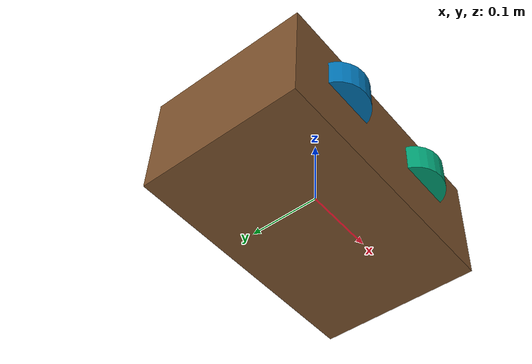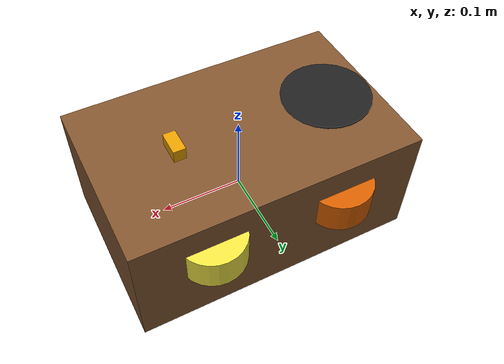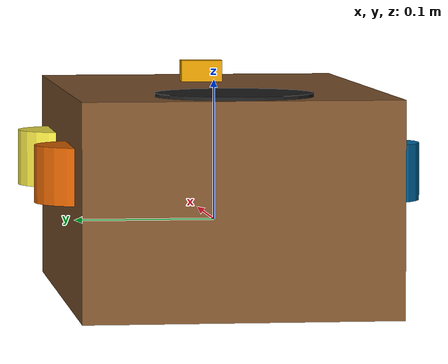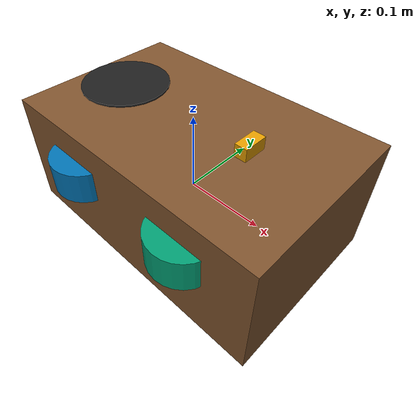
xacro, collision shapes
<?xml version="1.0" ?>
<robot name="RoomSeeker" xmlns:xacro="http://ros.org/wiki/xacro">
  <xacro:include filename="$(find room_seeker_description)/urdf/common_properties.xacro"/>
  <xacro:include filename="$(find room_seeker_description)/urdf/room_seeker.gazebo.xacro"/>

  <link name="base_footprint"/>

  <joint name="base_joint" type="fixed">
    <parent link="base_footprint"/>
    <child link="base_link" />
    <origin xyz="0 0 0" rpy="0 0 0"/>
  </joint>

  <link name="base_link">
    <visual>
      <origin xyz="0.0 0.0 0.0173" rpy="0 0 0"/>
      <geometry>
        <mesh filename="package://room_seeker_description/meshes/bases/MecanumCarBase.stl" scale="0.0001 0.0001 0.0001"/>
      </geometry>
      <material name="brown"/>
    </visual>

    <collision>
      <origin xyz="0.0 0.0 0.02" rpy="0 0 0"/>
      <geometry>
        <box size="0.35 0.22 0.15"/>
      </geometry>
    </collision>

    <inertial>
      <origin xyz="0 0 0" rpy="0 0 0"/>
      <mass value="1.3729096e+00"/>
      <inertia ixx="8.7002718e-03" ixy="-4.7576583e-05" ixz="1.1160499e-04"
               iyy="8.6195418e-03" iyz="-3.5422299e-06"
               izz="1.4612727e-02" />
    </inertial>
  </link>

  <!-- Front Right Wheel -->
  <joint name="front_right_wheel_joint" type="continuous">
    <parent link="base_link"/>
    <child link="front_right_wheel_link"/>
    <origin xyz="0.080 -0.095 0.040" rpy="0 0 0"/>
    <axis xyz="0 1 0"/>
  </joint>

  <link name="front_right_wheel_link">
    <visual>
      <origin xyz="0 0 0" rpy="0 0 0"/>
      <geometry>
        <mesh filename="package://room_seeker_description/meshes/wheels/RightMecanumWheel.stl" scale="0.00001 0.00001 0.00001"/>
      </geometry>
      <material name="dark"/>
    </visual>

    <collision>
      <origin xyz="0 0 0" rpy="0 0 0"/>
      <geometry>
        <cylinder length="0.040" radius="0.040"/>
      </geometry>
    </collision>

    <inertial>
      <origin xyz="0 0 0" />
      <mass value="2.8498940e-02" />
      <inertia ixx="1.1175580e-05" ixy="-4.2369783e-11" ixz="-5.9381719e-09"
               iyy="1.1192413e-05" iyz="-1.4400107e-11"
               izz="2.0712558e-05" />
      </inertial>
  </link>

  <!-- Front Left Wheel -->
  <joint name="front_left_wheel_joint" type="continuous">
    <parent link="base_link"/>
    <child link="front_left_wheel_link"/>
    <origin xyz="0.080 0.095 0.040" rpy="0 0 0"/>
    <axis xyz="0 1 0"/>
  </joint>

  <link name="front_left_wheel_link">
    <visual>
      <origin xyz="0 0 0" rpy="0 0 0"/>
      <geometry>
        <mesh filename="package://room_seeker_description/meshes/wheels/LeftMecanumWheel.stl" scale="0.0001 0.0001 0.0001"/>
      </geometry>
      <material name="dark"/>
    </visual>

    <collision>
      <origin xyz="0 0 0" rpy="0 0 0"/>
      <geometry>
        <cylinder length="0.040" radius="0.040"/>
      </geometry>
    </collision>

    <inertial>
      <origin xyz="0 0 0" />
      <mass value="2.8498940e-02" />
      <inertia ixx="1.1175580e-05" ixy="-4.2369783e-11" ixz="-5.9381719e-09"
               iyy="1.1192413e-05" iyz="-1.4400107e-11"
               izz="2.0712558e-05" />
      </inertial>
  </link>

  <!-- Rear Right Wheel -->
  <joint name="rear_right_wheel_joint" type="continuous">
    <parent link="base_link"/>
    <child link="rear_right_wheel_link"/>
    <origin xyz="-0.080 -0.095 0.040" rpy="0 0 0"/>
    <axis xyz="0 1 0"/>
  </joint>

  <link name="rear_right_wheel_link">
    <visual>
      <origin xyz="0 0 0" rpy="0 0 0"/>
      <geometry>
        <mesh filename="package://room_seeker_description/meshes/wheels/RightMecanumWheel.stl" scale="0.00001 0.00001 0.00001"/>
      </geometry>
      <material name="dark"/>
    </visual>

    <collision>
      <origin xyz="0 0 0" rpy="0 0 0"/>
      <geometry>
        <cylinder length="0.040" radius="0.040"/>
      </geometry>
    </collision>

    <inertial>
      <origin xyz="0 0 0" />
      <mass value="2.8498940e-02" />
      <inertia ixx="1.1175580e-05" ixy="-4.2369783e-11" ixz="-5.9381719e-09"
               iyy="1.1192413e-05" iyz="-1.4400107e-11"
               izz="2.0712558e-05" />
      </inertial>
  </link>

  <!-- Rear Left Wheel -->
  <joint name="rear_left_wheel_joint" type="continuous">
    <parent link="base_link"/>
    <child link="rear_left_wheel_link"/>
    <origin xyz="-0.080 0.095 0.040" rpy="0 0 0"/>
    <axis xyz="0 1 0"/>
  </joint>

  <link name="rear_left_wheel_link">
    <visual>
      <origin xyz="0 0 0" rpy="0 0 0"/>
      <geometry>
        <mesh filename="package://room_seeker_description/meshes/wheels/LeftMecanumWheel.stl" scale="0.0001 0.0001 0.0001"/>
      </geometry>
      <material name="dark"/>
    </visual>

    <collision>
      <origin xyz="0 0 0" rpy="0 0 0"/>
      <geometry>
        <cylinder length="0.040" radius="0.040"/>
      </geometry>
    </collision>

    <inertial>
      <origin xyz="0 0 0" />
      <mass value="2.8498940e-02" />
      <inertia ixx="1.1175580e-05" ixy="-4.2369783e-11" ixz="-5.9381719e-09"
               iyy="1.1192413e-05" iyz="-1.4400107e-11"
               izz="2.0712558e-05" />
      </inertial>
  </link>

  <!-- IMU part -->
  <joint name="imu_joint" type="fixed">
    <parent link="base_link"/>
    <child link="imu_link"/>
    <origin xyz="0.0 0 0.068" rpy="0 0 0"/>
  </joint>

  <link name="imu_link"/>

  <!-- Lidar part -->
  <joint name="scan_joint" type="fixed">
    <parent link="base_link"/>
    <child link="base_scan"/>
    <origin xyz="-0.132 0.0 0.0883" rpy="0 0 0"/>
  </joint>

  <link name="base_scan">
    <visual>
      <origin xyz="0.0 0.0 0.0" rpy="0 0 0"/>
      <geometry>
        <mesh filename="package://room_seeker_description/meshes/sensors/RP-lidar-A1.stl" scale="0.001 0.001 0.001"/>
      </geometry>
      <material name="dark"/>
    </visual>

    <collision>
      <origin xyz="0.015 0 -0.0065" rpy="0 0 0"/>
      <geometry>
        <cylinder length="0.0315" radius="0.055"/>
      </geometry>
    </collision>

    <inertial>
      <mass value="0.114" />
      <origin xyz="0 0 0" />
      <inertia ixx="0.001" ixy="0.0" ixz="0.0"
               iyy="0.001" iyz="0.0"
               izz="0.001" />
    </inertial>
  </link>

  <!-- Camera part -->
  <joint name="camera_joint" type="fixed">
    <origin xyz="0.073 -0.011 0.084" rpy="0 0 0"/>
    <parent link="base_link"/>
    <child link="camera_link"/>
  </joint>

  <link name="camera_link">
    <collision>
      <origin xyz="0.005 0.011 0.013" rpy="0 0 0"/>
      <geometry>
        <box size="0.015 0.030 0.027"/>
      </geometry>
    </collision>
  </link>

  <joint name="camera_rgb_joint" type="fixed">
    <origin xyz="0.003 0.011 0.009" rpy="0 0 0"/>
    <parent link="camera_link"/>
    <child link="camera_rgb_frame"/>
  </joint>
  <link name="camera_rgb_frame"/>

  <joint name="camera_rgb_optical_joint" type="fixed">
    <origin xyz="0 0 0" rpy="-1.57 0 -1.57"/>
    <parent link="camera_rgb_frame"/>
    <child link="camera_rgb_optical_frame"/>
  </joint>
  <link name="camera_rgb_optical_frame"/>

</robot>
